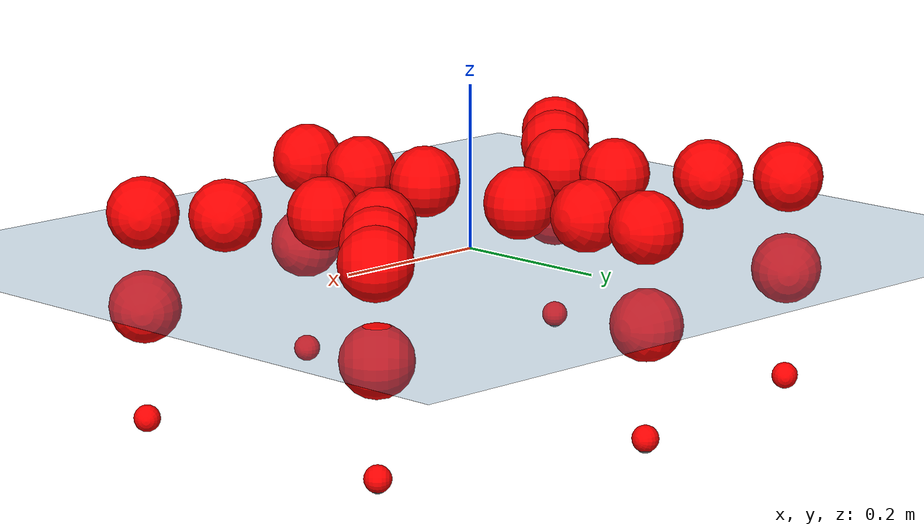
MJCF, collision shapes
<mujoco model="Golem">
  <compiler angle="radian" assetdir="assets" balanceinertia="true" inertiafromgeom="false"/>

  <option timestep="0.005" density="1.2" viscosity="2e-05"/>

  <size nkey="1"/>

  <visual>
    <quality shadowsize="8192"/>
    <map shadowclip="0.5"/>
  </visual>

  <default>
    <default class="/">
      <joint armature="0.01" damping="0.01" frictionloss="0.01"/>
      <geom contype="0" conaffinity="0" group="1" solref="-1000 -80"/>
      <site size="0.01 0.005 0.005" group="5"/>
      <general forcelimited="true" biastype="affine" gainprm="25" biasprm="0 -25 -0.5"/>
      <default class="visual">
        <geom type="mesh" group="2"/>
      </default>
      <default class="collision">
        <geom group="3"/>
      </default>
      <default class="foot">
        <geom size="0.01 0 0" condim="6" group="4" priority="1" solimp="0.015 1 0.01"/>
      </default>
      <default class="reward_collision_sphere">
        <geom group="5" rgba="1 0 0 1"/>
      </default>
    </default>
  </default>

  <asset>
    <texture type="skybox" colorspace="auto" name="//unnamed_texture_0" builtin="gradient" rgb1="0.95 0.95 0.95" rgb2="0.95 0.95 0.95" width="100" height="600"/>
    <texture type="2d" colorspace="auto" name="texplane" builtin="checker" rgb1="0.345 0.575 0.748" rgb2="0.345 0.575 0.748" markrgb="1 1 1" width="512" height="512"/>
    <material name="MatPlane" class="/" texture="texplane" texuniform="true" texrepeat="2 2" specular="0.9"/>
    <mesh name="body" class="/" file="body.stl" scale="0.001 0.001 0.001"/>
    <mesh name="coxa" class="/" file="coxa.stl" scale="0.001 0.001 0.001"/>
    <mesh name="femur" class="/" file="femur.stl" scale="0.001 0.001 0.001"/>
    <mesh name="tibia" class="/" file="tibia.stl" scale="0.001 0.001 0.001"/>
    <mesh name="tarsus" class="/" file="tarsus.stl" scale="0.001 0.001 0.001"/>
  </asset>

  <worldbody>
    <geom name="floor" class="/" size="100 100 0.125" type="plane" group="0" material="MatPlane"/>
    <light name="toplight_shadow" class="/" pos="0 0 5" dir="0.0990148 0.0990148 -0.990148" type="directional" ambient="0.04 0.04 0.04" diffuse="0.55 0.55 0.55" specular="0.12 0.12 0.12"/>
    <light name="toplight_fill" class="/" pos="0 0 5" dir="0.0990148 0.0990148 -0.990148" type="directional" castshadow="false" ambient="0.04 0.04 0.04" diffuse="0.3 0.3 0.3" specular="0.08 0.08 0.08"/>
    <body name="trunk" pos="-0.00201559 -0.000120299 -0.00102208" quat="1 0.000286809 0.000415001 0.000110586">
      <inertial pos="0.00136542 0.000470722 -0.00463955" quat="0.999907 -0.0109278 -0.00375659 -0.00728801" mass="4.63062" diaginertia="0.0326534 0.00585358 0.0146315"/>
      <joint name="//unnamed_joint_0" type="free"/>
      <geom name="//unnamed_geom_1" class="/" pos="0 0 0.069194" quat="1 0 0 0" type="mesh" rgba="0.9 0.9 0.9 1" mesh="body"/>
      <site name="imu" class="/" pos="0.167855 0.00190273 0.104294" size="0.0108252"/>
      <camera name="track" class="/" pos="0 -1.80024 0" quat="0.707107 0.707107 0 0" mode="trackcom"/>
      <camera name="ego_camera" class="/" pos="0.164617 0 0.108116" quat="-0.5 -0.5 0.5 0.5"/>
      <body name="coxa_RR" pos="-0.225363 -0.0721863 0.0690497" quat="0.382847 9.67506e-05 -0.000172 -0.923812">
        <inertial pos="0.000236318 -0.000138782 -3.70369e-05" quat="0.999961 0.00770846 -0.0016708 0.00406668" mass="0.246346" diaginertia="0.032662 0.00570116 0.0143786"/>
        <joint name="coxa_joint_RR" class="/" pos="0 0 0" axis="-0.00250793 -0.00183897 -0.999995" range="-3.14764 3.19393" armature="0.0104443" damping="0.0116873" frictionloss="0.0100874"/>
        <geom name="//unnamed_geom_2" class="/" type="mesh" rgba="0.2 0.2 0.2 1" mesh="coxa"/>
        <geom name="//unnamed_geom_3" class="reward_collision_sphere" size="0.0433008" pos="-0.0379885 0 0"/>
        <body name="femur_RR" pos="0.0751174 0.00207953 0.00288319" quat="0.499719 -0.499804 0.50005 0.500427">
          <inertial pos="-0.000189405 0.00270057 0.0025725" quat="0.999986 0.00099906 -0.00320178 -0.00417339" mass="0.25364" diaginertia="0.0337006 0.00592133 0.0153745"/>
          <joint name="femur_joint_RR" class="/" pos="0 0 0" axis="-0.00175728 -0.00194656 -0.999997" range="-3.16148 3.13523" armature="0.0105635" damping="0.0165702" frictionloss="0.0122191"/>
          <geom name="//unnamed_geom_4" class="/" type="mesh" rgba="0.9 0.9 0.9 1" mesh="femur"/>
          <geom name="//unnamed_geom_5" class="reward_collision_sphere" size="0.0433008"/>
          <body name="tibia_RR" pos="0.000806311 -0.0953325 -0.00237744" quat="4.25349e-05 1 8.60697e-05 2.11773e-05">
            <inertial pos="0.00114276 -0.00213456 0.000917501" quat="0.999997 -0.000965949 -0.00105984 -0.00187171" mass="0.25418" diaginertia="0.0324552 0.00592284 0.0146939"/>
            <joint name="tibia_joint_RR" class="/" pos="0 0 0" axis="0.000155067 0.000567764 1" range="-3.13864 3.13514" armature="0.0104543" damping="0.0207102" frictionloss="0.00988701"/>
            <geom name="//unnamed_geom_6" class="/" type="mesh" rgba="0.2 0.2 0.2 1" mesh="tibia"/>
            <geom name="//unnamed_geom_7" class="reward_collision_sphere" size="0.0433008"/>
            <body name="tarsus_RR" pos="0.108384 0.000346957 0.000152262" quat="1 0.000170154 -0.000179308 -8.20348e-05">
              <inertial pos="0.0747139 -0.000844074 0.000114228" quat="0.495426 0.502706 0.498475 0.50335" mass="0.261298" diaginertia="0.0337098 0.0059798 0.0145946"/>
              <joint name="tarsus_joint_RR" class="/" pos="0 0 0" axis="-0.000376138 -0.000227973 1" range="-3.19206 3.18892" armature="0.0108131" damping="0.00568764" frictionloss="0.0111248"/>
              <geom name="//unnamed_geom_8" class="/" type="mesh" rgba="0.9 0.9 0.9 1" mesh="tarsus"/>
              <geom name="foot_1" class="foot" size="0.0116161" pos="0.141824 0 0" quat="0 -0.707107 0 0.707107"/>
              <geom name="//unnamed_geom_10" class="reward_collision_sphere" size="0.0433008"/>
              <geom name="//unnamed_geom_11" class="reward_collision_sphere" size="0.0162378" pos="0.136126 0 0"/>
              <site name="foot_1" class="foot" pos="0.141824 0 0" quat="0 -0.707107 0 0.707107" size="0.0108252"/>
            </body>
          </body>
        </body>
      </body>
      <body name="coxa_RM" pos="-0.00286789 -0.120535 0.0704277" quat="0.706888 7.64895e-05 -1.87495e-05 -0.707325">
        <inertial pos="-6.18633e-05 -0.00141824 0.000847524" quat="0.99991 -0.00517881 -0.00685088 -0.0102664" mass="0.258736" diaginertia="0.0332584 0.0059037 0.0151419"/>
        <joint name="coxa_joint_RM" class="/" pos="0 0 0" axis="-0.000908615 -0.00155642 -0.999998" range="-3.11865 3.11878" armature="0.0107338" damping="0.00531963" frictionloss="0.0112446"/>
        <geom name="//unnamed_geom_12" class="/" type="mesh" rgba="0.2 0.2 0.2 1" mesh="coxa"/>
        <geom name="//unnamed_geom_13" class="reward_collision_sphere" size="0.0433008" pos="-0.0379885 0 0"/>
        <body name="femur_RM" pos="0.0744363 -0.0005055 -0.00326014" quat="0.500299 -0.500664 0.500168 0.498867">
          <inertial pos="-0.00274674 -0.00147142 -0.00257852" quat="0.999995 0.000252587 -0.00137884 0.00265913" mass="0.262337" diaginertia="0.0328953 0.0059166 0.0149065"/>
          <joint name="femur_joint_RM" class="/" pos="0 0 0" axis="0.00130184 0.00609293 -0.999981" range="-3.15835 3.19404" armature="0.0108478" damping="0.015012" frictionloss="0.00935215"/>
          <geom name="//unnamed_geom_14" class="/" type="mesh" rgba="0.9 0.9 0.9 1" mesh="femur"/>
          <geom name="//unnamed_geom_15" class="reward_collision_sphere" size="0.0433008"/>
          <body name="tibia_RM" pos="-0.00210448 -0.0951912 0.00237825" quat="0.000199935 1 -0.000349353 -0.000159936">
            <inertial pos="-0.00055848 -0.00116836 0.000318362" quat="1 -0.000509458 -0.00040113 0.000477698" mass="0.253454" diaginertia="0.0334036 0.00601534 0.0146342"/>
            <joint name="tibia_joint_RM" class="/" pos="0 0 0" axis="-0.0129477 -0.00211699 0.999914" stiffness="0.000597365" range="-3.14072 3.08535" armature="0.0114669" damping="0" frictionloss="0.0111153"/>
            <geom name="//unnamed_geom_16" class="/" type="mesh" rgba="0.2 0.2 0.2 1" mesh="tibia"/>
            <geom name="//unnamed_geom_17" class="reward_collision_sphere" size="0.0433008"/>
            <body name="tarsus_RM" pos="0.107848 0.00211707 -0.00245793" quat="1 3.368e-05 -0.000104626 -0.000503557">
              <inertial pos="0.0770399 0.000829294 0.00229592" quat="0.509114 0.496277 0.5009 0.49357" mass="0.253312" diaginertia="0.0331066 0.00588274 0.0142212"/>
              <joint name="tarsus_joint_RM" class="/" pos="0 0 0" axis="0.00056039 0.000974148 0.999999" range="-3.1936 3.08447" armature="0.0108646" damping="0.00626818" frictionloss="0.0113254"/>
              <geom name="//unnamed_geom_18" class="/" type="mesh" rgba="0.9 0.9 0.9 1" mesh="tarsus"/>
              <geom name="foot_2" class="foot" size="0.0107056" pos="0.141824 0 0" quat="0 -0.707107 0 0.707107"/>
              <geom name="//unnamed_geom_20" class="reward_collision_sphere" size="0.0433008"/>
              <geom name="//unnamed_geom_21" class="reward_collision_sphere" size="0.0162378" pos="0.136126 0 0"/>
              <site name="foot_2" class="foot" pos="0.141824 0 0" quat="0 -0.707107 0 0.707107" size="0.0108252"/>
            </body>
          </body>
        </body>
      </body>
      <body name="coxa_RF" pos="0.224397 -0.0739171 0.0675996" quat="0.923811 -0.000312485 -0.000316893 -0.382849">
        <inertial pos="0.000147181 -0.00244028 -0.000795914" quat="0.999994 -0.0013394 0.00186348 -0.00255135" mass="0.260797" diaginertia="0.0333039 0.00593168 0.014831"/>
        <joint name="coxa_joint_RF" class="/" pos="0 0 0" axis="-0.00118482 0.00358752 -0.999993" range="-3.13675 3.17997" armature="0.0111267" damping="0" frictionloss="0.0107608"/>
        <geom name="//unnamed_geom_22" class="/" type="mesh" rgba="0.2 0.2 0.2 1" mesh="coxa"/>
        <geom name="//unnamed_geom_23" class="reward_collision_sphere" size="0.0433008" pos="-0.0379885 0 0"/>
        <body name="femur_RF" pos="0.0775572 -0.000884802 -0.0027795" quat="0.499985 -0.500008 0.499992 0.500015">
          <inertial pos="-0.000947219 -0.000126982 0.00259539" quat="0.999992 -0.00382644 -0.000455067 -0.00100412" mass="0.250068" diaginertia="0.0327897 0.00580212 0.0149147"/>
          <joint name="femur_joint_RF" class="/" pos="0 0 0" axis="0.000200957 0.00223156 -0.999997" range="-3.08524 3.11825" armature="0.0105564" damping="0.0119087" frictionloss="0.00958348"/>
          <geom name="//unnamed_geom_24" class="/" type="mesh" rgba="0.9 0.9 0.9 1" mesh="femur"/>
          <geom name="//unnamed_geom_25" class="reward_collision_sphere" size="0.0433008"/>
          <body name="tibia_RF" pos="-0.00336622 -0.0965123 0.000408287" quat="8.88162e-05 1 0.000232599 0.000112287">
            <inertial pos="0.00221301 -0.000731665 5.1682e-05" quat="0.999911 -0.000776994 0.0126859 0.00415638" mass="0.257837" diaginertia="0.0318645 0.00580031 0.0148698"/>
            <joint name="tibia_joint_RF" class="/" pos="0 0 0" axis="-0.0103681 -0.00205659 0.999944" range="-3.13849 3.14009" armature="0.010274" damping="0.00617896" frictionloss="0.0109183"/>
            <geom name="//unnamed_geom_26" class="/" type="mesh" rgba="0.2 0.2 0.2 1" mesh="tibia"/>
            <geom name="//unnamed_geom_27" class="reward_collision_sphere" size="0.0433008"/>
            <body name="tarsus_RF" pos="0.11277 -0.000771761 -0.00216845" quat="1 -0.000221714 -0.000174865 0.000616124">
              <inertial pos="0.0767179 -0.00258187 -7.07125e-05" quat="0.499578 0.499825 0.501966 0.498624" mass="0.245208" diaginertia="0.0324433 0.00572112 0.014958"/>
              <joint name="tarsus_joint_RF" class="/" pos="0 0 0" axis="0.00604397 -0.013524 0.99989" range="-3.18779 3.13601" armature="0.0108595" damping="0.0190645" frictionloss="0.0111871"/>
              <geom name="//unnamed_geom_28" class="/" type="mesh" rgba="0.9 0.9 0.9 1" mesh="tarsus"/>
              <geom name="foot_3" class="foot" size="0.0103951" pos="0.141824 0 0" quat="0 -0.707107 0 0.707107"/>
              <geom name="//unnamed_geom_30" class="reward_collision_sphere" size="0.0433008"/>
              <geom name="//unnamed_geom_31" class="reward_collision_sphere" size="0.0162378" pos="0.136126 0 0"/>
              <site name="foot_3" class="foot" pos="0.141824 0 0" quat="0 -0.707107 0 0.707107" size="0.0108252"/>
            </body>
          </body>
        </body>
      </body>
      <body name="coxa_LR" pos="-0.224213 0.0775688 0.0710609" quat="0.382877 4.13859e-07 0.000158244 0.923799">
        <inertial pos="0.00101448 0.00062541 0.00298837" quat="0.999998 -5.46632e-05 -0.00179235 -0.000761811" mass="0.255211" diaginertia="0.0322986 0.00588882 0.0142125"/>
        <joint name="coxa_joint_LR" class="/" pos="0 0 0" axis="-0.00141325 -0.00283393 -0.999995" range="-3.1536 3.1307" armature="0.010694" damping="0" frictionloss="0.00935142"/>
        <geom name="//unnamed_geom_32" class="/" type="mesh" rgba="0.2 0.2 0.2 1" mesh="coxa"/>
        <geom name="//unnamed_geom_33" class="reward_collision_sphere" size="0.0433008" pos="-0.0379885 0 0"/>
        <body name="femur_LR" pos="0.0760041 -0.00345803 -0.000367896" quat="0.499969 -0.500355 0.499925 0.49975">
          <inertial pos="0.00268617 -0.000651052 0.00212266" quat="0.999999 3.05111e-05 0.000425265 -0.00105861" mass="0.24442" diaginertia="0.0323606 0.00585398 0.0148066"/>
          <joint name="femur_joint_LR" class="/" pos="0 0 0" axis="0.000353204 -0.00123895 0.999999" range="-3.1926 3.0844" armature="0.00937366" damping="0" frictionloss="0.0110968"/>
          <geom name="//unnamed_geom_34" class="/" type="mesh" rgba="0.9 0.9 0.9 1" mesh="femur"/>
          <geom name="//unnamed_geom_35" class="reward_collision_sphere" size="0.0433008"/>
          <body name="tibia_LR" pos="0.00319147 -0.0978819 -0.000458231" quat="4.69643e-05 1 -0.000112701 0.000470139">
            <inertial pos="0.000912043 -0.0025003 0.000474385" quat="0.999999 1.0306e-05 0.000291699 0.00164365" mass="0.259747" diaginertia="0.0319325 0.00606118 0.0143488"/>
            <joint name="tibia_joint_LR" class="/" pos="0 0 0" axis="-0.013354 0.00459157 -0.9999" range="-3.15937 3.08624" armature="0.010991" damping="0.0039929" frictionloss="0.010926"/>
            <geom name="//unnamed_geom_36" class="/" type="mesh" rgba="0.2 0.2 0.2 1" mesh="tibia"/>
            <geom name="//unnamed_geom_37" class="reward_collision_sphere" size="0.0433008"/>
            <body name="tarsus_LR" pos="0.114903 -0.000413133 -0.00165717" quat="0.999999 -0.000811438 0.000165095 0.00112795">
              <inertial pos="0.0741434 -0.00221717 0.000729067" quat="0.500076 0.499726 0.500048 0.50015" mass="0.255777" diaginertia="0.0327761 0.00574192 0.0151099"/>
              <joint name="tarsus_joint_LR" class="/" pos="0 0 0" axis="0.000238058 -8.47758e-05 -1" range="-3.14887 3.14636" armature="0.0109675" damping="0.0280161" frictionloss="0.0122966"/>
              <geom name="//unnamed_geom_38" class="/" type="mesh" rgba="0.9 0.9 0.9 1" mesh="tarsus"/>
              <geom name="foot_4" class="foot" size="0.0108014" pos="0.141824 0 0" quat="0.707107 0 -0.707107 0"/>
              <geom name="//unnamed_geom_40" class="reward_collision_sphere" size="0.0433008"/>
              <geom name="//unnamed_geom_41" class="reward_collision_sphere" size="0.0162378" pos="0.136126 0 0"/>
              <site name="foot_4" class="foot" pos="0.141824 0 0" quat="0.707107 0 -0.707107 0" size="0.0108252"/>
            </body>
          </body>
        </body>
      </body>
      <body name="coxa_LM" pos="-0.000437125 0.11845 0.0687967" quat="0.70682 -0.000479966 0.000130481 0.707393">
        <inertial pos="0.00296639 -7.3221e-05 0.000312805" quat="0.999999 -0.000133367 0.000648746 0.00095986" mass="0.244762" diaginertia="0.0324504 0.00571216 0.0144368"/>
        <joint name="coxa_joint_LM" class="/" pos="0 0 0" axis="-3.70866e-05 0.000233817 -1" range="-3.153 3.1395" armature="0.0111956" damping="0" frictionloss="0.00996108"/>
        <geom name="//unnamed_geom_42" class="/" type="mesh" rgba="0.2 0.2 0.2 1" mesh="coxa"/>
        <geom name="//unnamed_geom_43" class="reward_collision_sphere" size="0.0433008" pos="-0.0379885 0 0"/>
        <body name="femur_LM" pos="0.0714605 0.000194372 0.00157749" quat="0.49993 -0.500145 0.500019 0.499907">
          <inertial pos="0.00172677 -0.000660087 -0.00123272" quat="0.999997 0.000354468 0.000444268 -0.00244874" mass="0.26104" diaginertia="0.0323584 0.00607728 0.0156581"/>
          <joint name="femur_joint_LM" class="/" pos="0 0 0" axis="0.0125487 -0.00847983 0.999885" range="-3.08562 3.12514" armature="0.0114473" damping="0.00359151" frictionloss="0.0108745"/>
          <geom name="//unnamed_geom_44" class="/" type="mesh" rgba="0.9 0.9 0.9 1" mesh="femur"/>
          <geom name="//unnamed_geom_45" class="reward_collision_sphere" size="0.0433008"/>
          <body name="tibia_LM" pos="-0.000690464 -0.0939159 -0.000457027" quat="-4.27684e-05 1 -4.14172e-05 -7.98413e-05">
            <inertial pos="-0.00270156 0.000273642 5.75523e-05" quat="0.999997 -0.000955189 -0.00180452 -0.00133347" mass="0.250484" diaginertia="0.0327112 0.00594497 0.0150415"/>
            <joint name="tibia_joint_LM" class="/" pos="0 0 0" axis="0.000488591 -0.000373185 -1" stiffness="0.00801371" range="-3.15546 3.12692" armature="0.00968762" damping="0.00771485" frictionloss="0.00949985"/>
            <geom name="//unnamed_geom_46" class="/" type="mesh" rgba="0.2 0.2 0.2 1" mesh="tibia"/>
            <geom name="//unnamed_geom_47" class="reward_collision_sphere" size="0.0433008"/>
            <body name="tarsus_LM" pos="0.114861 0.00209127 -0.000258324" quat="1 0.000156905 3.06202e-05 -5.73899e-05">
              <inertial pos="0.0737162 0.000370254 -0.00168516" quat="0.501436 0.504567 0.505048 0.488775" mass="0.250712" diaginertia="0.0316045 0.00590903 0.0143821"/>
              <joint name="tarsus_joint_LM" class="/" pos="0 0 0" axis="-0.00765671 0.00506413 -0.999958" stiffness="0.00251718" range="-3.0926 3.1386" armature="0.0105665" damping="0.0161049" frictionloss="0.0106153"/>
              <geom name="//unnamed_geom_48" class="/" type="mesh" rgba="0.9 0.9 0.9 1" mesh="tarsus"/>
              <geom name="foot_5" class="foot" size="0.0118851" pos="0.141824 0 0" quat="0.707107 0 -0.707107 0"/>
              <geom name="//unnamed_geom_50" class="reward_collision_sphere" size="0.0433008"/>
              <geom name="//unnamed_geom_51" class="reward_collision_sphere" size="0.0162378" pos="0.136126 0 0"/>
              <site name="foot_5" class="foot" pos="0.141824 0 0" quat="0.707107 0 -0.707107 0" size="0.0108252"/>
            </body>
          </body>
        </body>
      </body>
      <body name="coxa_LF" pos="0.224507 0.0753297 0.0690234" quat="0.923868 2.67066e-05 4.70306e-05 0.382711">
        <inertial pos="0.000263364 -0.0024946 0.000164234" quat="0.999908 0.008347 0.0105061 0.00213028" mass="0.259352" diaginertia="0.0333851 0.00617632 0.0154453"/>
        <joint name="coxa_joint_LF" class="/" pos="0 0 0" axis="-0.000709593 -0.00339977 -0.999994" range="-3.09392 3.14228" armature="0.0114229" damping="0.0140178" frictionloss="0.00942004"/>
        <geom name="//unnamed_geom_52" class="/" type="mesh" rgba="0.2 0.2 0.2 1" mesh="coxa"/>
        <geom name="//unnamed_geom_53" class="reward_collision_sphere" size="0.0433008" pos="-0.0379885 0 0"/>
        <body name="femur_LF" pos="0.0722508 -0.000994353 0.00194291" quat="0.500233 -0.500114 0.499596 0.500056">
          <inertial pos="0.000267894 0.00167571 -0.00267706" quat="0.999988 0.00233685 -0.00266057 -0.00332916" mass="0.258033" diaginertia="0.0330427 0.00604219 0.0145963"/>
          <joint name="femur_joint_LF" class="/" pos="0 0 0" axis="0.0023926 -0.000123987 0.999997" range="-3.11942 3.13667" armature="0.0118543" damping="0.00157467" frictionloss="0.0108665"/>
          <geom name="//unnamed_geom_54" class="/" type="mesh" rgba="0.9 0.9 0.9 1" mesh="femur"/>
          <geom name="//unnamed_geom_55" class="reward_collision_sphere" size="0.0433008"/>
          <body name="tibia_LF" pos="0.000234959 -0.0988462 0.000912072" quat="-0.000201469 1 8.22313e-05 0.000138215">
            <inertial pos="0.00266053 0.00282646 0.00250483" quat="0.999998 0.0014003 -0.00131569 3.45271e-05" mass="0.255712" diaginertia="0.032783 0.00608069 0.0153514"/>
            <joint name="tibia_joint_LF" class="/" pos="0 0 0" axis="4.25983e-05 -9.3295e-05 -1" stiffness="0.00549545" range="-3.09911 3.08441" armature="0.011405" damping="0.00530466" frictionloss="0.00985358"/>
            <geom name="//unnamed_geom_56" class="/" type="mesh" rgba="0.2 0.2 0.2 1" mesh="tibia"/>
            <geom name="//unnamed_geom_57" class="reward_collision_sphere" size="0.0433008"/>
            <body name="tarsus_LF" pos="0.110183 0.00176846 -0.000734668" quat="1 3.03576e-05 -2.54472e-05 4.28987e-07">
              <inertial pos="0.0745463 0.00101318 0.0026497" quat="0.499862 0.499659 0.49102 0.509292" mass="0.256391" diaginertia="0.0338892 0.00592461 0.0153465"/>
              <joint name="tarsus_joint_LF" class="/" pos="0 0 0" axis="-0.00227826 0.00181923 -0.999996" stiffness="0.00440623" range="-3.19233 3.08434" armature="0.011584" damping="0.0145564" frictionloss="0.0115409"/>
              <geom name="//unnamed_geom_58" class="/" type="mesh" rgba="0.9 0.9 0.9 1" mesh="tarsus"/>
              <geom name="foot_6" class="foot" size="0.0114686" pos="0.141824 0 0" quat="0.707107 0 -0.707107 0"/>
              <geom name="//unnamed_geom_60" class="reward_collision_sphere" size="0.0433008"/>
              <geom name="//unnamed_geom_61" class="reward_collision_sphere" size="0.0162378" pos="0.136126 0 0"/>
              <site name="foot_6" class="foot" pos="0.141824 0 0" quat="0.707107 0 -0.707107 0" size="0.0108252"/>
            </body>
          </body>
        </body>
      </body>
    </body>
  </worldbody>

  <contact>
    <pair class="/" geom1="floor" geom2="foot_1" name="//unnamed_contact_0"/>
    <pair class="/" geom1="floor" geom2="foot_2" name="//unnamed_contact_1"/>
    <pair class="/" geom1="floor" geom2="foot_3" name="//unnamed_contact_2"/>
    <pair class="/" geom1="floor" geom2="foot_4" name="//unnamed_contact_3"/>
    <pair class="/" geom1="floor" geom2="foot_5" name="//unnamed_contact_4"/>
    <pair class="/" geom1="floor" geom2="foot_6" name="//unnamed_contact_5"/>
  </contact>

  <actuator>
    <general name="coxa_joint_RR" class="/" joint="coxa_joint_RR" forcerange="-8.2068 8.2068" gainprm="27.7073" biasprm="0 -27.7073 -0.575479"/>
    <general name="femur_joint_RR" class="/" joint="femur_joint_RR" forcerange="-8.00881 8.00881" gainprm="27.7073" biasprm="0 -27.7073 -0.575479"/>
    <general name="tibia_joint_RR" class="/" joint="tibia_joint_RR" forcerange="-7.88358 7.88358" gainprm="27.7073" biasprm="0 -27.7073 -0.575479"/>
    <general name="tarsus_joint_RR" class="/" joint="tarsus_joint_RR" forcerange="-7.82933 7.82933" gainprm="27.7073" biasprm="0 -27.7073 -0.575479"/>
    <general name="coxa_joint_RM" class="/" joint="coxa_joint_RM" forcerange="-7.95287 7.95287" gainprm="27.7073" biasprm="0 -27.7073 -0.575479"/>
    <general name="femur_joint_RM" class="/" joint="femur_joint_RM" forcerange="-8.01303 8.01303" gainprm="27.7073" biasprm="0 -27.7073 -0.575479"/>
    <general name="tibia_joint_RM" class="/" joint="tibia_joint_RM" forcerange="-7.88655 7.88655" gainprm="27.7073" biasprm="0 -27.7073 -0.575479"/>
    <general name="tarsus_joint_RM" class="/" joint="tarsus_joint_RM" forcerange="-7.20415 7.20415" gainprm="27.7073" biasprm="0 -27.7073 -0.575479"/>
    <general name="coxa_joint_RF" class="/" joint="coxa_joint_RF" forcerange="-7.91591 7.91591" gainprm="27.7073" biasprm="0 -27.7073 -0.575479"/>
    <general name="femur_joint_RF" class="/" joint="femur_joint_RF" forcerange="-7.87548 7.87548" gainprm="27.7073" biasprm="0 -27.7073 -0.575479"/>
    <general name="tibia_joint_RF" class="/" joint="tibia_joint_RF" forcerange="-7.95531 7.95531" gainprm="27.7073" biasprm="0 -27.7073 -0.575479"/>
    <general name="tarsus_joint_RF" class="/" joint="tarsus_joint_RF" forcerange="-8.17741 8.17741" gainprm="27.7073" biasprm="0 -27.7073 -0.575479"/>
    <general name="coxa_joint_LR" class="/" joint="coxa_joint_LR" forcerange="-7.99227 7.99227" gainprm="27.7073" biasprm="0 -27.7073 -0.575479"/>
    <general name="femur_joint_LR" class="/" joint="femur_joint_LR" forcerange="-7.11624 7.11624" gainprm="27.7073" biasprm="0 -27.7073 -0.575479"/>
    <general name="tibia_joint_LR" class="/" joint="tibia_joint_LR" forcerange="-7.60898 7.60898" gainprm="27.7073" biasprm="0 -27.7073 -0.575479"/>
    <general name="tarsus_joint_LR" class="/" joint="tarsus_joint_LR" forcerange="-7.88313 7.88313" gainprm="27.7073" biasprm="0 -27.7073 -0.575479"/>
    <general name="coxa_joint_LM" class="/" joint="coxa_joint_LM" forcerange="-7.75754 7.75754" gainprm="27.7073" biasprm="0 -27.7073 -0.575479"/>
    <general name="femur_joint_LM" class="/" joint="femur_joint_LM" forcerange="-7.67611 7.67611" gainprm="27.7073" biasprm="0 -27.7073 -0.575479"/>
    <general name="tibia_joint_LM" class="/" joint="tibia_joint_LM" forcerange="-7.91119 7.91119" gainprm="27.7073" biasprm="0 -27.7073 -0.575479"/>
    <general name="tarsus_joint_LM" class="/" joint="tarsus_joint_LM" forcerange="-8.32931 8.32931" gainprm="27.7073" biasprm="0 -27.7073 -0.575479"/>
    <general name="coxa_joint_LF" class="/" joint="coxa_joint_LF" forcerange="-8.07348 8.07348" gainprm="27.7073" biasprm="0 -27.7073 -0.575479"/>
    <general name="femur_joint_LF" class="/" joint="femur_joint_LF" forcerange="-8.56495 8.56495" gainprm="27.7073" biasprm="0 -27.7073 -0.575479"/>
    <general name="tibia_joint_LF" class="/" joint="tibia_joint_LF" forcerange="-7.94107 7.94107" gainprm="27.7073" biasprm="0 -27.7073 -0.575479"/>
    <general name="tarsus_joint_LF" class="/" joint="tarsus_joint_LF" forcerange="-7.16774 7.16774" gainprm="27.7073" biasprm="0 -27.7073 -0.575479"/>
  </actuator>

  <sensor>
    <gyro site="imu" name="imu_angular_velocity"/>
    <velocimeter site="imu" name="imu_linear_velocity"/>
    <framelinvel objtype="site" objname="foot_1" name="foot_1_global_linear_velocity"/>
    <framelinvel objtype="site" objname="foot_2" name="foot_2_global_linear_velocity"/>
    <framelinvel objtype="site" objname="foot_3" name="foot_3_global_linear_velocity"/>
    <framelinvel objtype="site" objname="foot_4" name="foot_4_global_linear_velocity"/>
    <framelinvel objtype="site" objname="foot_5" name="foot_5_global_linear_velocity"/>
    <framelinvel objtype="site" objname="foot_6" name="foot_6_global_linear_velocity"/>
  </sensor>

  <keyframe>
    <key name="home" qpos="0 0 0.1457 1 0 0 0 0 0 0 0 0 0 0 0 0 0 0 0 0 0 0 0 0 0 0 0 0 0 0 0"/>
  </keyframe>
</mujoco>
